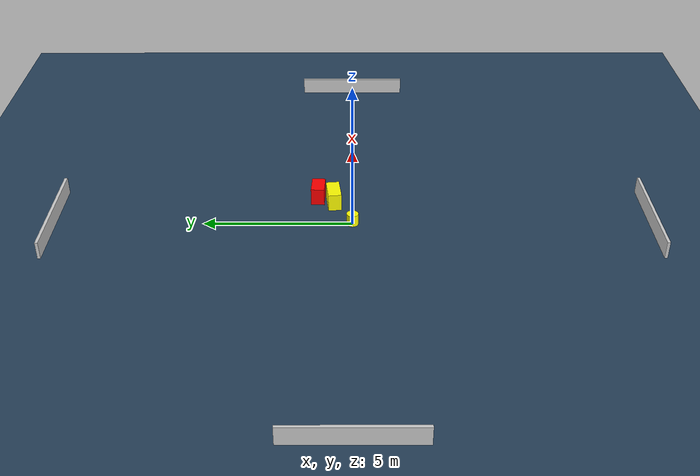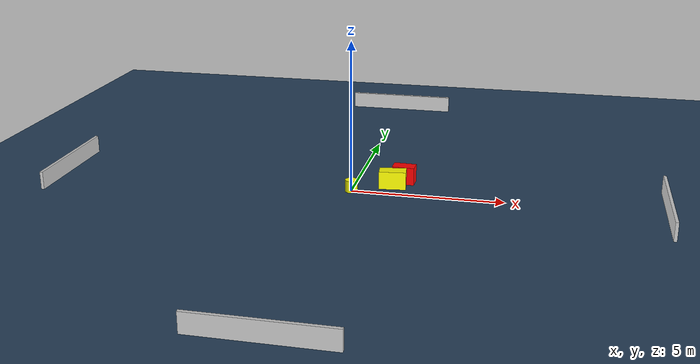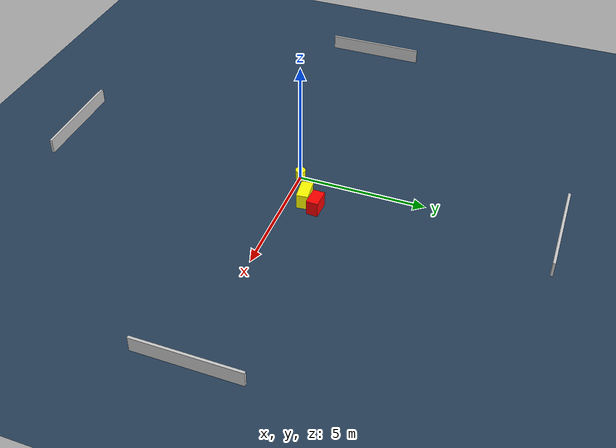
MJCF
<?xml version="1.0" ?>
<mujoco model="generated_environment">
  <option timestep="0.01" integrator="RK4" cone="elliptic"/>
  <default>
    <geom density="1"/>
  </default>
  <asset>
    <texture builtin="gradient" height="3072" name="skybox" rgb1="0.3 0.5 0.7" rgb2="0 0 0" type="skybox" width="512"/>
    <texture builtin="checker" height="300" name="groundplane" rgb1="0.2 0.3 0.4" rgb2="0.1 0.2 0.3" type="2d" width="300"/>
    <material name="groundplane" reflectance="0.2" texrepeat="5 5" texture="groundplane"/>
  </asset>
  <worldbody>
    <light dir="0 0 -1" directional="true" pos="0 0 1.5"/>
    <geom condim="3" friction="0.5 0.005 0.001" material="groundplane" name="floor" pos="0 0 0" size="0 0 0.05" type="plane"/>
    <body name="walls">
      <geom name="wall_1" condim="4" pos="-10.0 0.0 0.3" rgba="0.800000011920929 0.800000011920929 0.800000011920929 1.0" size="0.05 2.0 0.3" type="box"/>
      <geom name="wall_2" condim="4" pos="10.0 0.0 0.3" rgba="0.800000011920929 0.800000011920929 0.800000011920929 1.0" size="0.05 2.0 0.3" type="box"/>
      <geom name="wall_3" condim="4" pos="0.0 -10.0 0.3" rgba="0.800000011920929 0.800000011920929 0.800000011920929 1.0" size="2.0 0.05 0.3" type="box"/>
      <geom name="wall_4" condim="4" pos="0.0 10.0 0.3" rgba="0.800000011920929 0.800000011920929 0.800000011920929 1.0" size="2.0 0.05 0.3" type="box"/>
    </body>
    <body name="robot">
      <joint name="joint_x" type="slide" pos="0 0 0" axis="1 0 0"/>
      <joint name="joint_y" type="slide" pos="0 0 0" axis="0 1 0"/>
      <geom name="robot" type="cylinder" pos="0.0 0.0 0.2" size="0.2 0.2 0.0" mass="5.0" friction="1.0 0.005 0.0001" condim="4" rgba="1.0 1.0 0.0 1.0"/>
    </body>
    <body name="obstacle_1_movable">
      <geom name="obstacle_1_movable" condim="4" pos="1.2610888113083791 0.6465874305284228 0.3" euler="0 0 186.33881151381036" friction="0.0 0.005 0.001" rgba="1.0 1.0 0.0 1.0" size="0.443616861811709 0.22583622825575345 0.3" type="box" mass="0.1"/>
      <joint type="free"/>
    </body>
    <body name="obstacle_2_static">
      <geom name="obstacle_2_static" condim="4" pos="1.5573441359516844 1.1830840337553135 0.3" euler="0 0 177.56739427773988" friction="0.0 0.005 0.001" rgba="1.0 0.0 0.0 1.0" size="0.3726994809223172 0.22855634934752575 0.3" type="box"/>
    </body>
  </worldbody>
  <actuator>
    <motor name="actuator_x" joint="joint_x" gear="1" ctrlrange="-1 1"/>
    <motor name="actuator_y" joint="joint_y" gear="1" ctrlrange="-1 1"/>
  </actuator>
</mujoco>
